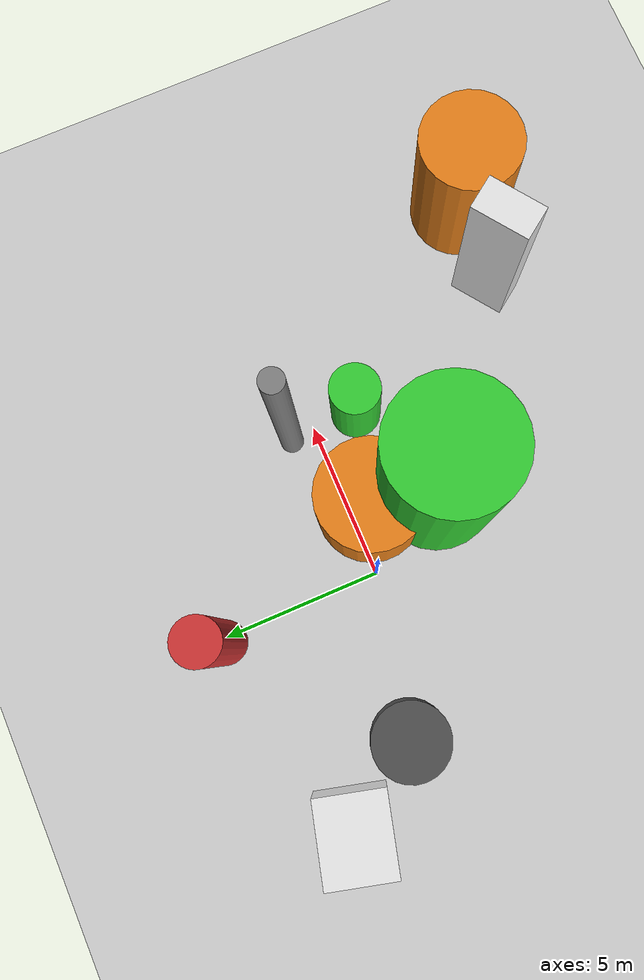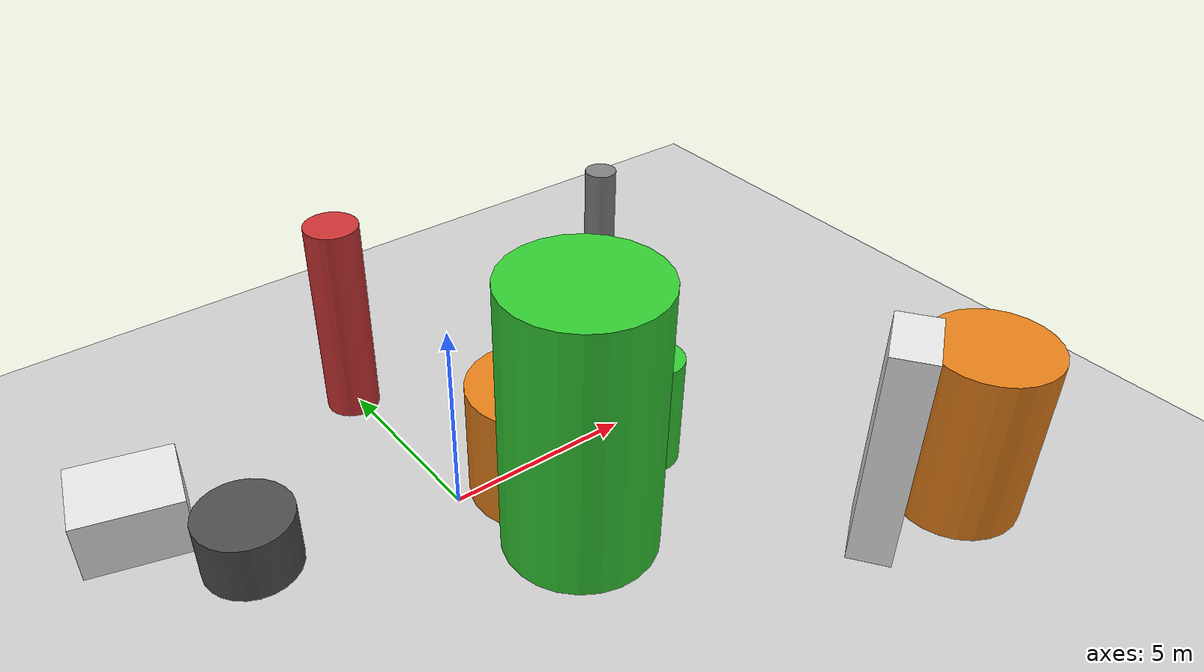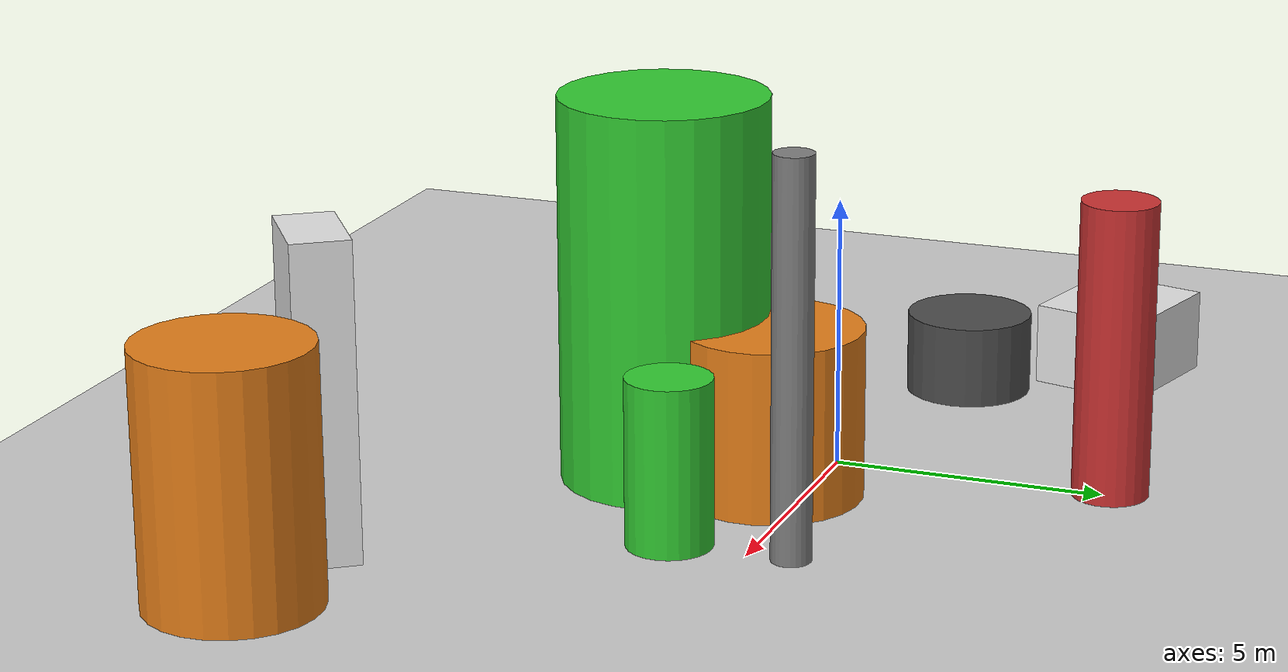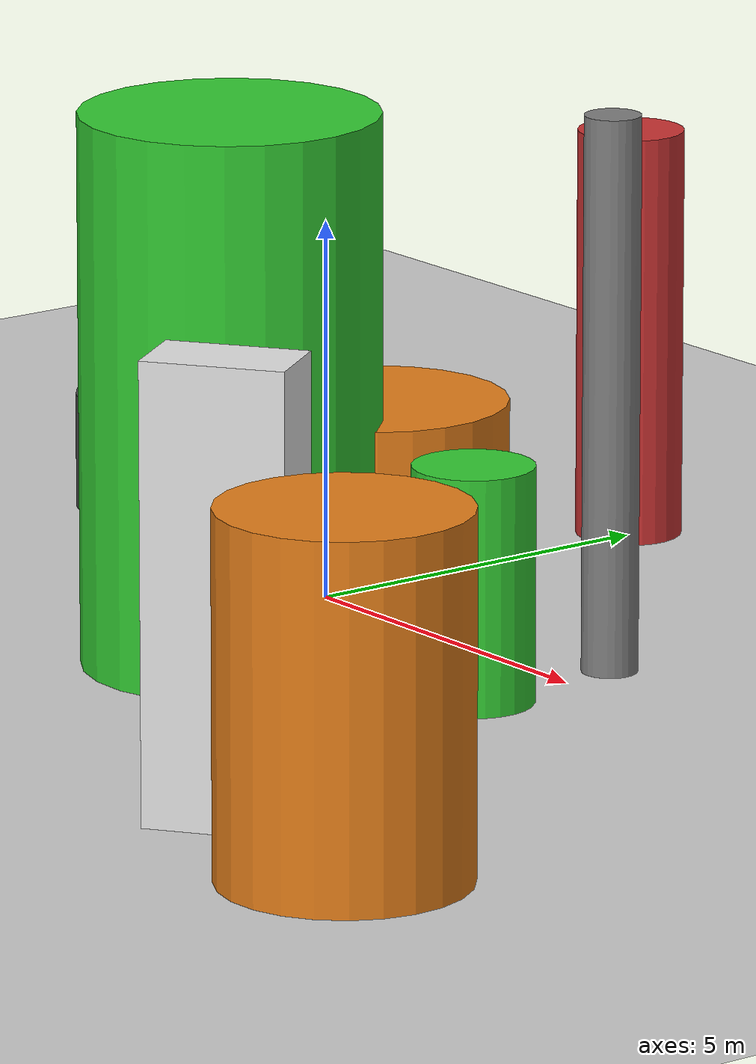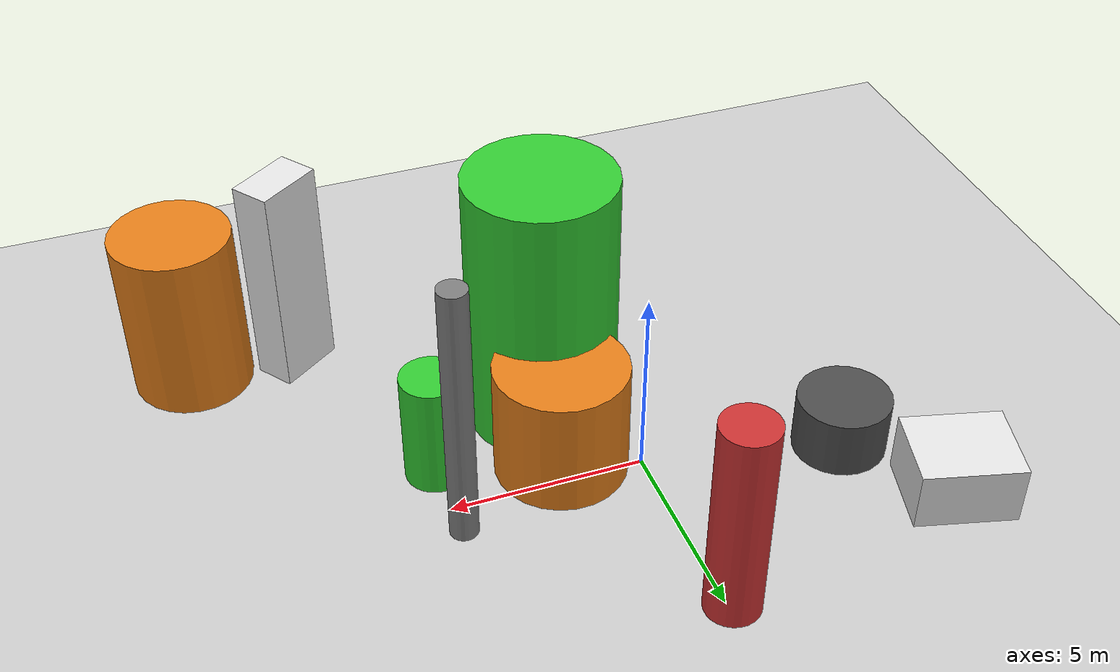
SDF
<?xml version='1.0'?>
<sdf version='1.6'>
  <world name='default'>
    <!-- Sun light -->
    <light name='sun' type='directional'>
      <cast_shadows>1</cast_shadows>
      <pose>0 0 10 0 0 0</pose>
      <diffuse>0.8 0.8 0.8 1</diffuse>
      <specular>0.2 0.2 0.2 1</specular>
      <attenuation>
        <range>1000</range>
        <constant>0.9</constant>
        <linear>0.01</linear>
        <quadratic>0.001</quadratic>
      </attenuation>
      <direction>-0.5 0.1 -0.9</direction>
    </light>

    <!-- Ground plane -->
    <model name='ground_plane'>
      <static>1</static>
      <link name='link'>
        <collision name='collision'>
          <geometry>
            <plane>
              <normal>0 0 1</normal>
              <size>100 100</size>
            </plane>
          </geometry>
          <surface>
            <contact>
              <collide_bitmask>65535</collide_bitmask>
              <ode/>
            </contact>
            <friction>
              <ode>
                <mu>100</mu>
                <mu2>50</mu2>
              </ode>
              <torsional><ode/></torsional>
            </friction>
            <bounce/>
          </surface>
          <max_contacts>10</max_contacts>
        </collision>
        <visual name='visual'>
          <cast_shadows>0</cast_shadows>
          <geometry>
            <plane>
              <normal>0 0 1</normal>
              <size>100 100</size>
            </plane>
          </geometry>
          <material>
            <script>
              <uri>file://media/materials/scripts/gazebo.material</uri>
              <n>Gazebo/Grey</n>
            </script>
          </material>
        </visual>
      </link>
    </model>

    <!-- Environment -->
    <magnetic_field>6e-06 2.3e-05 -4.2e-05</magnetic_field>
    <atmosphere type='adiabatic'/>
    <physics name='default_physics' default='0' type='ode'>
      <gravity>0 0 -9.8</gravity>
      <max_step_size>0.004</max_step_size>
      <real_time_factor>1</real_time_factor>
      <real_time_update_rate>250</real_time_update_rate>
    </physics>
    <scene>
      <ambient>0.4 0.4 0.4 1</ambient>
      <background>0.7 0.7 0.7 1</background>
      <shadows>1</shadows>
    </scene>
    <wind/>
    <spherical_coordinates>
      <surface_model>EARTH_WGS84</surface_model>
      <latitude_deg>0</latitude_deg>
      <longitude_deg>0</longitude_deg>
      <elevation>0</elevation>
      <heading_deg>0</heading_deg>
    </spherical_coordinates>

    <!-- ============ OBSTACLES (9) ============ -->
    <model name='obs_00'>
      <static>1</static>
      <link name='link'>
        <visual name='visual'>
          <geometry>
            <cylinder>
              <radius>0.3619</radius>
              <length>7.1935</length>
            </cylinder>
          </geometry>
          <material>
            <script>
              <n>Gazebo/Grey</n>
              <uri>file://media/materials/scripts/gazebo.material</uri>
            </script>
            <ambient>0.5 0.5 0.5 1</ambient>
          </material>
        </visual>
        <collision name='collision'>
          <geometry>
            <cylinder>
              <radius>0.3619</radius>
              <length>7.1935</length>
            </cylinder>
          </geometry>
          <max_contacts>10</max_contacts>
          <surface>
            <contact><ode/></contact>
            <bounce/>
            <friction>
              <ode><mu>1</mu><mu2>1</mu2></ode>
              <torsional><ode/></torsional>
            </friction>
          </surface>
        </collision>
      </link>
      <pose>4.8998 0.7795 3.5968 0 0 2.1372</pose>
    </model>

    <model name='obs_01'>
      <static>1</static>
      <link name='link'>
        <visual name='visual'>
          <geometry>
            <cylinder>
              <radius>0.7793</radius>
              <length>3.0545</length>
            </cylinder>
          </geometry>
          <material>
            <script>
              <n>Gazebo/Green</n>
              <uri>file://media/materials/scripts/gazebo.material</uri>
            </script>
            <ambient>0.2 0.8 0.2 1</ambient>
          </material>
        </visual>
        <collision name='collision'>
          <geometry>
            <cylinder>
              <radius>0.7793</radius>
              <length>3.0545</length>
            </cylinder>
          </geometry>
          <max_contacts>10</max_contacts>
          <surface>
            <contact><ode/></contact>
            <bounce/>
            <friction>
              <ode><mu>1</mu><mu2>1</mu2></ode>
              <torsional><ode/></torsional>
            </friction>
          </surface>
        </collision>
      </link>
      <pose>4.9403 -1.4313 1.5273 0 0 2.4146</pose>
    </model>

    <model name='obs_02'>
      <static>1</static>
      <link name='link'>
        <visual name='visual'>
          <geometry>
            <cylinder>
              <radius>1.9146</radius>
              <length>7.1310</length>
            </cylinder>
          </geometry>
          <material>
            <script>
              <n>Gazebo/Green</n>
              <uri>file://media/materials/scripts/gazebo.material</uri>
            </script>
            <ambient>0.2 0.8 0.2 1</ambient>
          </material>
        </visual>
        <collision name='collision'>
          <geometry>
            <cylinder>
              <radius>1.9146</radius>
              <length>7.1310</length>
            </cylinder>
          </geometry>
          <max_contacts>10</max_contacts>
          <surface>
            <contact><ode/></contact>
            <bounce/>
            <friction>
              <ode><mu>1</mu><mu2>1</mu2></ode>
              <torsional><ode/></torsional>
            </friction>
          </surface>
        </collision>
      </link>
      <pose>1.6707 -2.7601 3.5655 0 0 1.4254</pose>
    </model>

    <model name='obs_03'>
      <static>1</static>
      <link name='link'>
        <visual name='visual'>
          <geometry>
            <cylinder>
              <radius>1.5596</radius>
              <length>4.5538</length>
            </cylinder>
          </geometry>
          <material>
            <script>
              <n>Gazebo/Orange</n>
              <uri>file://media/materials/scripts/gazebo.material</uri>
            </script>
            <ambient>0.9 0.5 0.1 1</ambient>
          </material>
        </visual>
        <collision name='collision'>
          <geometry>
            <cylinder>
              <radius>1.5596</radius>
              <length>4.5538</length>
            </cylinder>
          </geometry>
          <max_contacts>10</max_contacts>
          <surface>
            <contact><ode/></contact>
            <bounce/>
            <friction>
              <ode><mu>1</mu><mu2>1</mu2></ode>
              <torsional><ode/></torsional>
            </friction>
          </surface>
        </collision>
      </link>
      <pose>9.9465 -7.2334 2.2769 0 0 3.0533</pose>
    </model>

    <model name='obs_04'>
      <static>1</static>
      <link name='link'>
        <visual name='visual'>
          <geometry>
            <cylinder>
              <radius>0.7021</radius>
              <length>5.4726</length>
            </cylinder>
          </geometry>
          <material>
            <script>
              <n>Gazebo/Red</n>
              <uri>file://media/materials/scripts/gazebo.material</uri>
            </script>
            <ambient>0.8 0.2 0.2 1</ambient>
          </material>
        </visual>
        <collision name='collision'>
          <geometry>
            <cylinder>
              <radius>0.7021</radius>
              <length>5.4726</length>
            </cylinder>
          </geometry>
          <max_contacts>10</max_contacts>
          <surface>
            <contact><ode/></contact>
            <bounce/>
            <friction>
              <ode><mu>1</mu><mu2>1</mu2></ode>
              <torsional><ode/></torsional>
            </friction>
          </surface>
        </collision>
      </link>
      <pose>-0.1297 5.1156 2.7363 0 0 2.7348</pose>
    </model>

    <model name='obs_05'>
      <static>1</static>
      <link name='link'>
        <visual name='visual'>
          <geometry>
            <box>
              <size>1.8087 1.0654 5.7675</size>
            </box>
          </geometry>
          <material>
            <script>
              <n>Gazebo/White</n>
              <uri>file://media/materials/scripts/gazebo.material</uri>
            </script>
            <ambient>0.9 0.9 0.9 1</ambient>
          </material>
        </visual>
        <collision name='collision'>
          <geometry>
            <box>
              <size>1.8087 1.0654 5.7675</size>
            </box>
          </geometry>
          <max_contacts>10</max_contacts>
          <surface>
            <contact><ode/></contact>
            <bounce/>
            <friction>
              <ode><mu>1</mu><mu2>1</mu2></ode>
              <torsional><ode/></torsional>
            </friction>
          </surface>
        </collision>
      </link>
      <pose>7.2221 -6.9432 2.8837 0 0 0.6249</pose>
    </model>

    <model name='obs_06'>
      <static>1</static>
      <link name='link'>
        <visual name='visual'>
          <geometry>
            <box>
              <size>2.5963 2.2101 1.5593</size>
            </box>
          </geometry>
          <material>
            <script>
              <n>Gazebo/White</n>
              <uri>file://media/materials/scripts/gazebo.material</uri>
            </script>
            <ambient>0.9 0.9 0.9 1</ambient>
          </material>
        </visual>
        <collision name='collision'>
          <geometry>
            <box>
              <size>2.5963 2.2101 1.5593</size>
            </box>
          </geometry>
          <max_contacts>10</max_contacts>
          <surface>
            <contact><ode/></contact>
            <bounce/>
            <friction>
              <ode><mu>1</mu><mu2>1</mu2></ode>
              <torsional><ode/></torsional>
            </friction>
          </surface>
        </collision>
      </link>
      <pose>-6.8004 3.6096 0.7797 0 0 2.8855</pose>
    </model>

    <model name='obs_07'>
      <static>1</static>
      <link name='link'>
        <visual name='visual'>
          <geometry>
            <cylinder>
              <radius>1.6886</radius>
              <length>3.1526</length>
            </cylinder>
          </geometry>
          <material>
            <script>
              <n>Gazebo/Orange</n>
              <uri>file://media/materials/scripts/gazebo.material</uri>
            </script>
            <ambient>0.9 0.5 0.1 1</ambient>
          </material>
        </visual>
        <collision name='collision'>
          <geometry>
            <cylinder>
              <radius>1.6886</radius>
              <length>3.1526</length>
            </cylinder>
          </geometry>
          <max_contacts>10</max_contacts>
          <surface>
            <contact><ode/></contact>
            <bounce/>
            <friction>
              <ode><mu>1</mu><mu2>1</mu2></ode>
              <torsional><ode/></torsional>
            </friction>
          </surface>
        </collision>
      </link>
      <pose>1.9178 -0.6390 1.5763 0 0 2.7606</pose>
    </model>

    <model name='obs_08'>
      <static>1</static>
      <link name='link'>
        <visual name='visual'>
          <geometry>
            <cylinder>
              <radius>1.1996</radius>
              <length>1.5513</length>
            </cylinder>
          </geometry>
          <material>
            <script>
              <n>Gazebo/DarkGrey</n>
              <uri>file://media/materials/scripts/gazebo.material</uri>
            </script>
            <ambient>0.3 0.3 0.3 1</ambient>
          </material>
        </visual>
        <collision name='collision'>
          <geometry>
            <cylinder>
              <radius>1.1996</radius>
              <length>1.5513</length>
            </cylinder>
          </geometry>
          <max_contacts>10</max_contacts>
          <surface>
            <contact><ode/></contact>
            <bounce/>
            <friction>
              <ode><mu>1</mu><mu2>1</mu2></ode>
              <torsional><ode/></torsional>
            </friction>
          </surface>
        </collision>
      </link>
      <pose>-4.9717 1.0645 0.7756 0 0 0.7567</pose>
    </model>

    <!-- GUI camera -->
    <gui fullscreen='0'>
      <camera name='user_camera'>
        <pose>-15 0 18 0 0.85 0.15</pose>
        <view_controller>orbit</view_controller>
        <projection_type>perspective</projection_type>
      </camera>
    </gui>
  </world>
</sdf>
